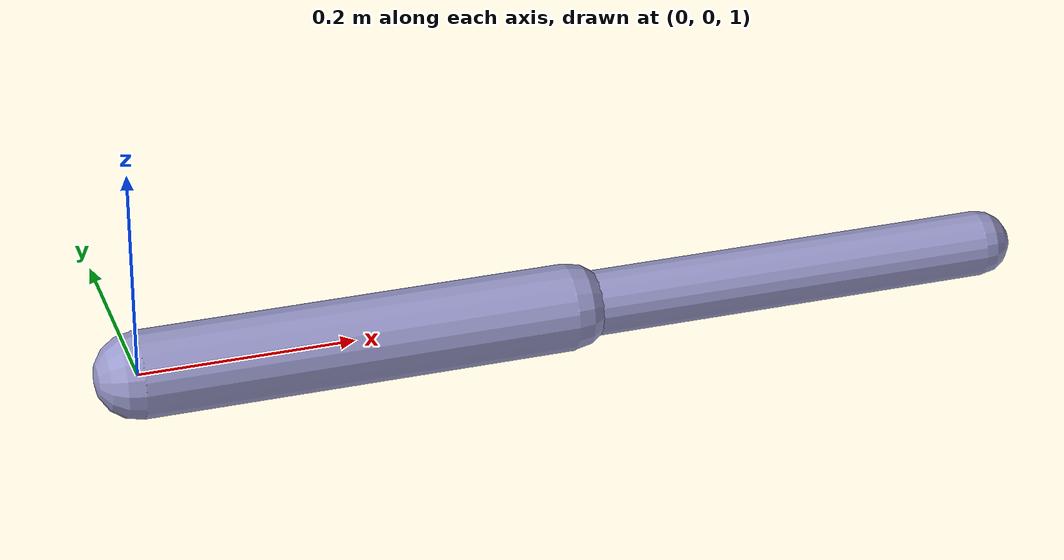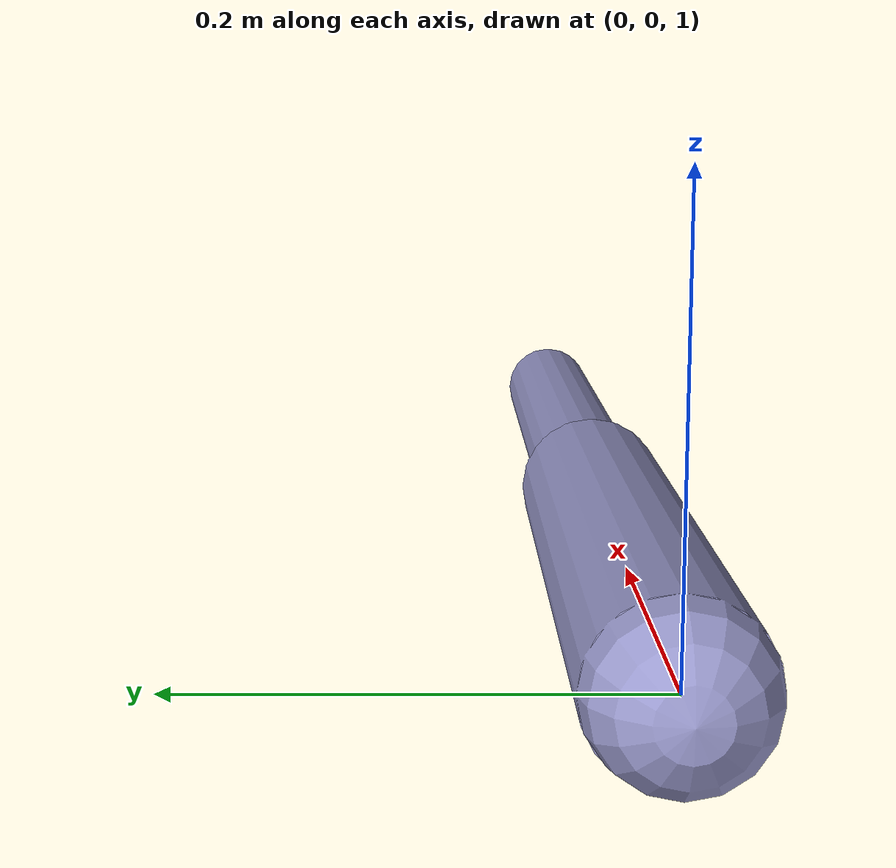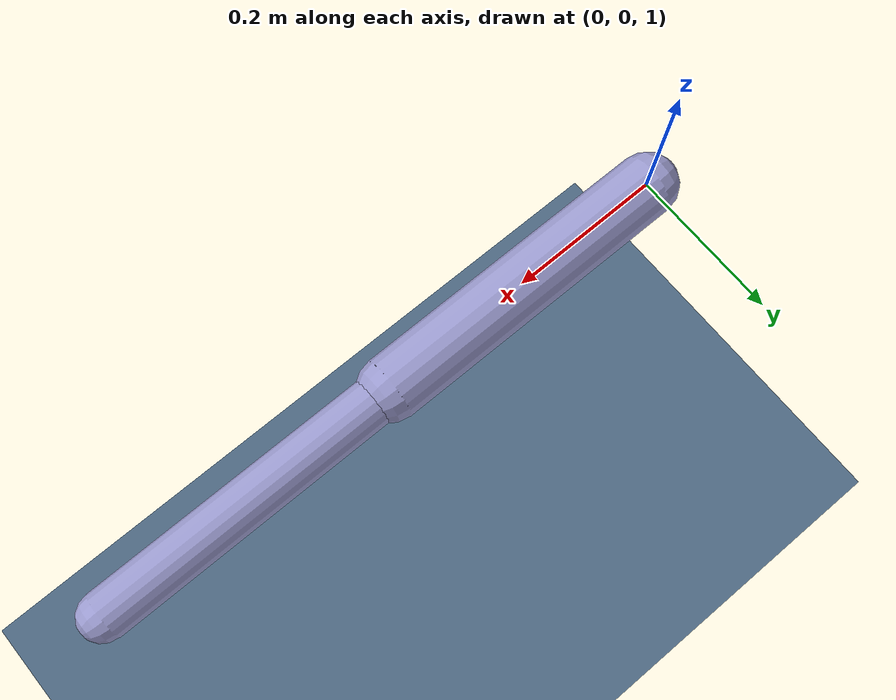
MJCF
<mujoco model="sensored_arm">
  <option timestep="0.002" integrator="implicitfast" gravity="0 0 -9.81"/>

  <!-- Enlarge the offscreen framebuffer so the headless web_viewer can
       render at higher resolutions than the 640x480 default. -->
  <visual>
    <global offwidth="1280" offheight="720"/>
  </visual>

  <default>
    <joint damping="0.1" armature="0.01"/>
    <geom rgba="0.6 0.6 0.8 1"/>
  </default>

  <worldbody>
    <light pos="0 0 3" dir="0 0 -1"/>
    <geom name="floor" type="plane" size="2 2 0.1" rgba="0.3 0.4 0.5 1"/>

    <body name="link1" pos="0 0 1" euler="0 90 0">
      <joint name="shoulder" type="hinge" axis="0 1 0" range="-180 180"/>
      <geom name="g1" type="capsule" fromto="0 0 0 0 0 0.4" size="0.04" mass="1"/>
      <!-- IMU site: an accelerometer + gyro live here. -->
      <site name="imu" pos="0 0 0.2" size="0.02" rgba="0 1 0 1"/>
      <body name="link2" pos="0 0 0.4">
        <joint name="elbow" type="hinge" axis="0 1 0" range="-180 180"/>
        <geom name="g2" type="capsule" fromto="0 0 0 0 0 0.4" size="0.03" mass="0.6"/>
        <site name="tip" pos="0 0 0.4" size="0.02" rgba="1 0 0 1"/>
      </body>
    </body>
  </worldbody>

  <actuator>
    <motor name="motor_shoulder" joint="shoulder" ctrlrange="-20 20"/>
    <motor name="motor_elbow"    joint="elbow"    ctrlrange="-20 20"/>
  </actuator>

  <sensor>
    <accelerometer name="imu_acc"  site="imu"/>
    <gyro          name="imu_gyro" site="imu"/>
    <framepos      name="tip_pos"  objtype="site" objname="tip"/>
    <framequat     name="tip_quat" objtype="site" objname="tip"/>
    <jointpos      name="enc_shoulder" joint="shoulder"/>
    <jointpos      name="enc_elbow"    joint="elbow"/>
    <jointvel      name="vel_shoulder" joint="shoulder"/>
    <force         name="ft_force"  site="tip"/>
    <torque        name="ft_torque" site="tip"/>
  </sensor>
</mujoco>
